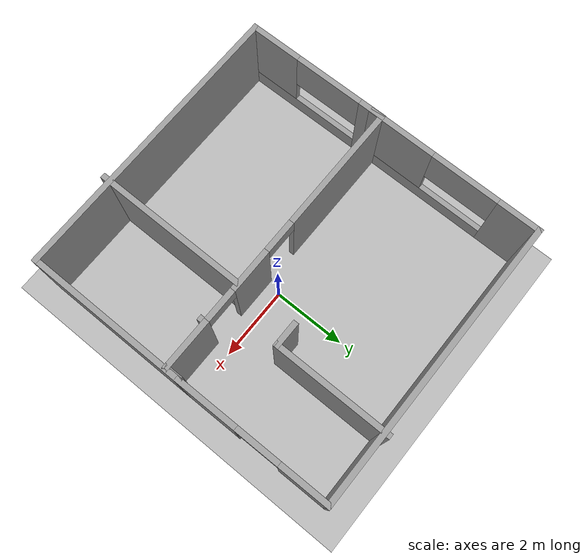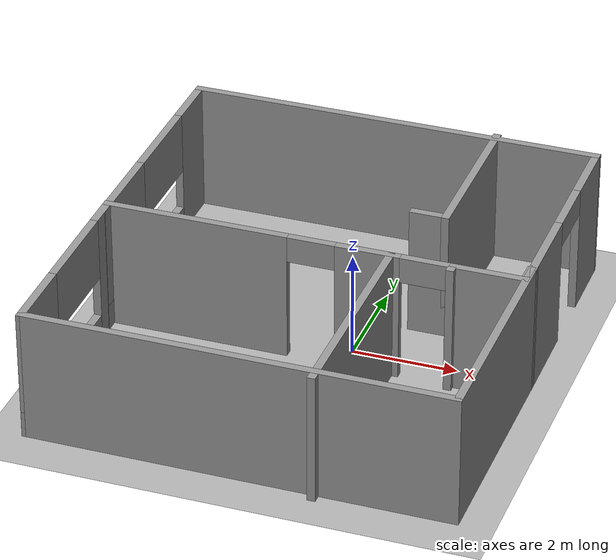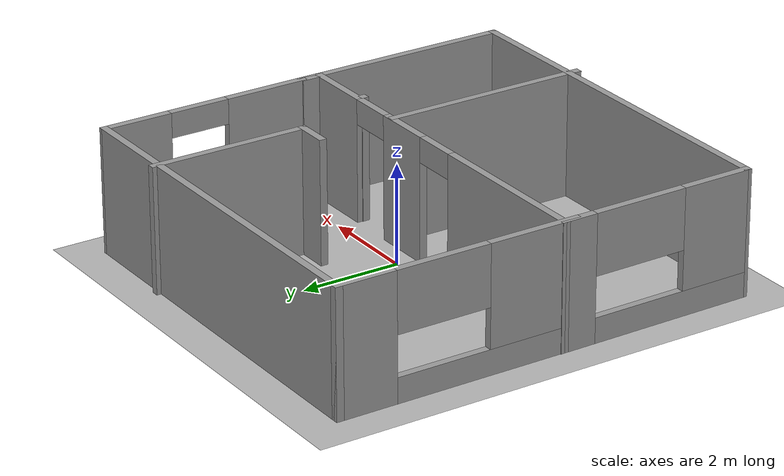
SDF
<sdf version="1.9">
 <world name="world_smth">
  <gravity>0 0 -9.8</gravity>
  <magnetic_field>6e-06 2.3e-05 -4.2e-05</magnetic_field>
  <atmosphere type="adiabatic"/>
  <physics type="ode">
   <max_step_size>0.001</max_step_size>
   <real_time_factor>1</real_time_factor>
   <real_time_update_rate>1000</real_time_update_rate>
  </physics>
  <scene><ambient>0.4 0.4 0.4 1</ambient><background>0.7 0.7 0.7 1</background><shadows>true</shadows></scene>
  <model name="Model">
   <pose>-0.590105 -0.18 0 0 -0 0</pose>
   <link name="Wall_0">
    <collision name="Wall_0_Collision">
     <geometry><box><size>8 0.15 2.5</size></box></geometry>
     <pose>0 0 1.25 0 -0 0</pose>
    </collision>
    <visual name="Wall_0_Visual">
     <pose>0 0 1.25 0 -0 0</pose>
     <geometry><box><size>8 0.15 2.5</size></box></geometry>
     <material>
      <script><uri>file://media/materials/scripts/gazebo.material</uri><name>Gazebo/Grey</name></script>
      <ambient>1 1 1 1</ambient>
     </material>
     <meta><layer>0</layer></meta>
    </visual>
    <pose>0.015105 -4.24 0 0 -0 0</pose>
    <inertial>
     <mass>1</mass>
     <inertia><ixx>1</ixx><ixy>0</ixy><ixz>0</ixz><iyy>1</iyy><iyz>0</iyz><izz>1</izz></inertia>
    </inertial>
   </link>
   <link name="Wall_1">
    <collision name="Wall_1_Collision">
     <geometry><box><size>4.5 0.15 2.5</size></box></geometry>
     <pose>0 0 1.25 0 -0 0</pose>
    </collision>
    <visual name="Wall_1_Visual">
     <pose>0 0 1.25 0 -0 0</pose>
     <geometry><box><size>4.5 0.15 2.5</size></box></geometry>
     <material>
      <script><uri>file://media/materials/scripts/gazebo.material</uri><name>Gazebo/Grey</name></script>
      <ambient>1 1 1 1</ambient>
     </material>
     <meta><layer>0</layer></meta>
    </visual>
    <pose>3.9401 -2.065 0 0 -0 1.5708</pose>
    <inertial>
     <mass>1</mass>
     <inertia><ixx>1</ixx><ixy>0</ixy><ixz>0</ixz><iyy>1</iyy><iyz>0</iyz><izz>1</izz></inertia>
    </inertial>
   </link>
   <link name="Wall_10">
    <collision name="Wall_10_Collision">
     <geometry><box><size>8 0.15 2.5</size></box></geometry>
     <pose>0 0 1.25 0 -0 0</pose>
    </collision>
    <visual name="Wall_10_Visual">
     <pose>0 0 1.25 0 -0 0</pose>
     <geometry><box><size>8 0.15 2.5</size></box></geometry>
     <material>
      <script><uri>file://media/materials/scripts/gazebo.material</uri><name>Gazebo/Grey</name></script>
      <ambient>1 1 1 1</ambient>
     </material>
     <meta><layer>0</layer></meta>
    </visual>
    <pose>-0.004895 4.31 0 0 -0 0</pose>
    <inertial>
     <mass>1</mass>
     <inertia><ixx>1</ixx><ixy>0</ixy><ixz>0</ixz><iyy>1</iyy><iyz>0</iyz><izz>1</izz></inertia>
    </inertial>
   </link>
   <link name="Wall_13">
    <pose>-3.92489 -2.26 0 0 0 -1.56322</pose>
    <visual name="Wall_13_Visual_0">
     <pose>-1.69206 0 1.25 0 -0 0</pose>
     <geometry><box><size>0.725992 0.15 2.5</size></box></geometry>
     <material>
      <script><uri>file://media/materials/scripts/gazebo.material</uri><name>Gazebo/Grey</name></script>
      <ambient>1 1 1 1</ambient>
     </material>
     <meta><layer>0</layer></meta>
    </visual>
    <collision name="Wall_13_Collision_0">
     <geometry><box><size>0.725992 0.15 2.5</size></box></geometry>
     <pose>-1.69206 0 1.25 0 -0 0</pose>
    </collision>
    <visual name="Wall_13_Visual_1">
     <pose>0.362996 0 0.25 0 -0 0</pose>
     <geometry><box><size>3.38412 0.15 0.5</size></box></geometry>
     <material>
      <script><uri>file://media/materials/scripts/gazebo.material</uri><name>Gazebo/Grey</name></script>
      <ambient>1 1 1 1</ambient>
     </material>
     <meta><layer>0</layer></meta>
    </visual>
    <collision name="Wall_13_Collision_1">
     <geometry><box><size>3.38412 0.15 0.5</size></box></geometry>
     <pose>0.362996 0 0.25 0 -0 0</pose>
    </collision>
    <visual name="Wall_13_Visual_2">
     <pose>1.31809 0 1.5 0 -0 0</pose>
     <geometry><box><size>1.47393 0.15 2</size></box></geometry>
     <material>
      <script><uri>file://media/materials/scripts/gazebo.material</uri><name>Gazebo/Grey</name></script>
      <ambient>1 1 1 1</ambient>
     </material>
     <meta><layer>0</layer></meta>
    </visual>
    <collision name="Wall_13_Collision_2">
     <geometry><box><size>1.47393 0.15 2</size></box></geometry>
     <pose>1.31809 0 1.5 0 -0 0</pose>
    </collision>
    <visual name="Wall_13_Visual_3">
     <pose>-0.373967 0 1.9 0 -0 0</pose>
     <geometry><box><size>1.9102 0.15 1.2</size></box></geometry>
     <material>
      <script><uri>file://media/materials/scripts/gazebo.material</uri><name>Gazebo/Grey</name></script>
      <ambient>1 1 1 1</ambient>
     </material>
     <meta><layer>0</layer></meta>
    </visual>
    <collision name="Wall_13_Collision_3">
     <geometry><box><size>1.9102 0.15 1.2</size></box></geometry>
     <pose>-0.373967 0 1.9 0 -0 0</pose>
    </collision>
    <inertial>
     <mass>1</mass>
     <inertia><ixx>1</ixx><ixy>0</ixy><ixz>0</ixz><iyy>1</iyy><iyz>0</iyz><izz>1</izz></inertia>
    </inertial>
   </link>
   <link name="Wall_18">
    <collision name="Wall_18_Collision">
     <geometry><box><size>0.75 0.15 2.5</size></box></geometry>
     <pose>0 0 1.25 0 -0 0</pose>
    </collision>
    <visual name="Wall_18_Visual">
     <pose>0 0 1.25 0 -0 0</pose>
     <geometry><box><size>0.75 0.15 2.5</size></box></geometry>
     <material>
      <script><uri>file://media/materials/scripts/gazebo.material</uri><name>Gazebo/Grey</name></script>
      <ambient>1 1 1 1</ambient>
     </material>
     <meta><layer>0</layer></meta>
    </visual>
    <pose>1.6701 1.3 0 0 -0 0</pose>
    <inertial>
     <mass>1</mass>
     <inertia><ixx>1</ixx><ixy>0</ixy><ixz>0</ixz><iyy>1</iyy><iyz>0</iyz><izz>1</izz></inertia>
    </inertial>
   </link>
   <link name="Wall_19">
    <collision name="Wall_19_Collision">
     <geometry><box><size>3.25 0.15 2.5</size></box></geometry>
     <pose>0 0 1.25 0 -0 0</pose>
    </collision>
    <visual name="Wall_19_Visual">
     <pose>0 0 1.25 0 -0 0</pose>
     <geometry><box><size>3.25 0.15 2.5</size></box></geometry>
     <material>
      <script><uri>file://media/materials/scripts/gazebo.material</uri><name>Gazebo/Grey</name></script>
      <ambient>1 1 1 1</ambient>
     </material>
     <meta><layer>0</layer></meta>
    </visual>
    <pose>1.9701 2.85 0 0 -0 1.5708</pose>
    <inertial>
     <mass>1</mass>
     <inertia><ixx>1</ixx><ixy>0</ixy><ixz>0</ixz><iyy>1</iyy><iyz>0</iyz><izz>1</izz></inertia>
    </inertial>
   </link>
   <link name="Wall_21">
    <pose>3.93011 2.21 0 0 0 -1.56603</pose>
    <visual name="Wall_21_Visual_0">
     <pose>-1.46617 0 1.25 0 -0 0</pose>
     <geometry><box><size>1.41771 0.15 2.5</size></box></geometry>
     <material>
      <script><uri>file://media/materials/scripts/gazebo.material</uri><name>Gazebo/Grey</name></script>
      <ambient>1 1 1 1</ambient>
     </material>
     <meta><layer>0</layer></meta>
    </visual>
    <collision name="Wall_21_Collision_0">
     <geometry><box><size>1.41771 0.15 2.5</size></box></geometry>
     <pose>-1.46617 0 1.25 0 -0 0</pose>
    </collision>
    <visual name="Wall_21_Visual_1">
     <pose>1.3139 0 1.25 0 -0 0</pose>
     <geometry><box><size>1.72226 0.15 2.5</size></box></geometry>
     <material>
      <script><uri>file://media/materials/scripts/gazebo.material</uri><name>Gazebo/Grey</name></script>
      <ambient>1 1 1 1</ambient>
     </material>
     <meta><layer>0</layer></meta>
    </visual>
    <collision name="Wall_21_Collision_1">
     <geometry><box><size>1.72226 0.15 2.5</size></box></geometry>
     <pose>1.3139 0 1.25 0 -0 0</pose>
    </collision>
    <visual name="Wall_21_Visual_2">
     <pose>-0.152275 0 2.25 0 -0 0</pose>
     <geometry><box><size>1.21008 0.15 0.5</size></box></geometry>
     <material>
      <script><uri>file://media/materials/scripts/gazebo.material</uri><name>Gazebo/Grey</name></script>
      <ambient>1 1 1 1</ambient>
     </material>
     <meta><layer>0</layer></meta>
    </visual>
    <collision name="Wall_21_Collision_2">
     <geometry><box><size>1.21008 0.15 0.5</size></box></geometry>
     <pose>-0.152275 0 2.25 0 -0 0</pose>
    </collision>
    <inertial>
     <mass>1</mass>
     <inertia><ixx>1</ixx><ixy>0</ixy><ixz>0</ixz><iyy>1</iyy><iyz>0</iyz><izz>1</izz></inertia>
    </inertial>
   </link>
   <link name="Wall_23">
    <pose>-0.014895 -0.28 0 0 -0 0</pose>
    <visual name="Wall_23_Visual_0">
     <pose>-2.2325 0 1.25 0 -0 0</pose>
     <geometry><box><size>3.535 0.15 2.5</size></box></geometry>
     <material>
      <script><uri>file://media/materials/scripts/gazebo.material</uri><name>Gazebo/Grey</name></script>
      <ambient>1 1 1 1</ambient>
     </material>
     <meta><layer>0</layer></meta>
    </visual>
    <collision name="Wall_23_Collision_0">
     <geometry><box><size>3.535 0.15 2.5</size></box></geometry>
     <pose>-2.2325 0 1.25 0 -0 0</pose>
    </collision>
    <visual name="Wall_23_Visual_1">
     <pose>1.04 0 1.25 0 -0 0</pose>
     <geometry><box><size>1.21 0.15 2.5</size></box></geometry>
     <material>
      <script><uri>file://media/materials/scripts/gazebo.material</uri><name>Gazebo/Grey</name></script>
      <ambient>1 1 1 1</ambient>
     </material>
     <meta><layer>0</layer></meta>
    </visual>
    <collision name="Wall_23_Collision_1">
     <geometry><box><size>1.21 0.15 2.5</size></box></geometry>
     <pose>1.04 0 1.25 0 -0 0</pose>
    </collision>
    <visual name="Wall_23_Visual_2">
     <pose>3.2725 0 1.25 0 -0 0</pose>
     <geometry><box><size>1.455 0.15 2.5</size></box></geometry>
     <material>
      <script><uri>file://media/materials/scripts/gazebo.material</uri><name>Gazebo/Grey</name></script>
      <ambient>1 1 1 1</ambient>
     </material>
     <meta><layer>0</layer></meta>
    </visual>
    <collision name="Wall_23_Collision_2">
     <geometry><box><size>1.455 0.15 2.5</size></box></geometry>
     <pose>3.2725 0 1.25 0 -0 0</pose>
    </collision>
    <visual name="Wall_23_Visual_3">
     <pose>-0.015 0 2.25 0 -0 0</pose>
     <geometry><box><size>0.9 0.15 0.5</size></box></geometry>
     <material>
      <script><uri>file://media/materials/scripts/gazebo.material</uri><name>Gazebo/Grey</name></script>
      <ambient>1 1 1 1</ambient>
     </material>
     <meta><layer>0</layer></meta>
    </visual>
    <collision name="Wall_23_Collision_3">
     <geometry><box><size>0.9 0.15 0.5</size></box></geometry>
     <pose>-0.015 0 2.25 0 -0 0</pose>
    </collision>
    <visual name="Wall_23_Visual_4">
     <pose>2.095 0 2.25 0 -0 0</pose>
     <geometry><box><size>0.9 0.15 0.5</size></box></geometry>
     <material>
      <script><uri>file://media/materials/scripts/gazebo.material</uri><name>Gazebo/Grey</name></script>
      <ambient>1 1 1 1</ambient>
     </material>
     <meta><layer>0</layer></meta>
    </visual>
    <collision name="Wall_23_Collision_4">
     <geometry><box><size>0.9 0.15 0.5</size></box></geometry>
     <pose>2.095 0 2.25 0 -0 0</pose>
    </collision>
    <inertial>
     <mass>1</mass>
     <inertia><ixx>1</ixx><ixy>0</ixy><ixz>0</ixz><iyy>1</iyy><iyz>0</iyz><izz>1</izz></inertia>
    </inertial>
   </link>
   <link name="Wall_24">
    <collision name="Wall_24_Collision">
     <geometry><box><size>0.5 0.15 2.5</size></box></geometry>
     <pose>0 0 1.25 0 -0 0</pose>
    </collision>
    <visual name="Wall_24_Visual">
     <pose>0 0 1.25 0 -0 0</pose>
     <geometry><box><size>0.5 0.15 2.5</size></box></geometry>
     <material>
      <script><uri>file://media/materials/scripts/gazebo.material</uri><name>Gazebo/Grey</name></script>
      <ambient>1 1 1 1</ambient>
     </material>
     <meta><layer>0</layer></meta>
    </visual>
    <pose>3.91011 -0.105 0 0 -0 1.5708</pose>
    <inertial>
     <mass>1</mass>
     <inertia><ixx>1</ixx><ixy>0</ixy><ixz>0</ixz><iyy>1</iyy><iyz>0</iyz><izz>1</izz></inertia>
    </inertial>
   </link>
   <link name="Wall_27">
    <pose>-3.9299 1.885 0 0 0 -1.5708</pose>
    <visual name="Wall_27_Visual_0">
     <pose>-1.8925 0 1.25 0 -0 0</pose>
     <geometry><box><size>1.215 0.15 2.5</size></box></geometry>
     <material>
      <script><uri>file://media/materials/scripts/gazebo.material</uri><name>Gazebo/Grey</name></script>
      <ambient>1 1 1 1</ambient>
     </material>
     <meta><layer>0</layer></meta>
    </visual>
    <collision name="Wall_27_Collision_0">
     <geometry><box><size>1.215 0.15 2.5</size></box></geometry>
     <pose>-1.8925 0 1.25 0 -0 0</pose>
    </collision>
    <visual name="Wall_27_Visual_1">
     <pose>0.6075 0 0.25 0 -0 0</pose>
     <geometry><box><size>3.785 0.15 0.5</size></box></geometry>
     <material>
      <script><uri>file://media/materials/scripts/gazebo.material</uri><name>Gazebo/Grey</name></script>
      <ambient>1 1 1 1</ambient>
     </material>
     <meta><layer>0</layer></meta>
    </visual>
    <collision name="Wall_27_Collision_1">
     <geometry><box><size>3.785 0.15 0.5</size></box></geometry>
     <pose>0.6075 0 0.25 0 -0 0</pose>
    </collision>
    <visual name="Wall_27_Visual_2">
     <pose>1.5525 0 1.5 0 -0 0</pose>
     <geometry><box><size>1.895 0.15 2</size></box></geometry>
     <material>
      <script><uri>file://media/materials/scripts/gazebo.material</uri><name>Gazebo/Grey</name></script>
      <ambient>1 1 1 1</ambient>
     </material>
     <meta><layer>0</layer></meta>
    </visual>
    <collision name="Wall_27_Collision_2">
     <geometry><box><size>1.895 0.15 2</size></box></geometry>
     <pose>1.5525 0 1.5 0 -0 0</pose>
    </collision>
    <visual name="Wall_27_Visual_3">
     <pose>-0.34 0 1.9 0 -0 0</pose>
     <geometry><box><size>1.89 0.15 1.2</size></box></geometry>
     <material>
      <script><uri>file://media/materials/scripts/gazebo.material</uri><name>Gazebo/Grey</name></script>
      <ambient>1 1 1 1</ambient>
     </material>
     <meta><layer>0</layer></meta>
    </visual>
    <collision name="Wall_27_Collision_3">
     <geometry><box><size>1.89 0.15 1.2</size></box></geometry>
     <pose>-0.34 0 1.9 0 -0 0</pose>
    </collision>
    <inertial>
     <mass>1</mass>
     <inertia><ixx>1</ixx><ixy>0</ixy><ixz>0</ixz><iyy>1</iyy><iyz>0</iyz><izz>1</izz></inertia>
    </inertial>
   </link>
   <link name="Wall_3">
    <collision name="Wall_3_Collision">
     <geometry><box><size>0.15 0.15 2.5</size></box></geometry>
     <pose>0 0 1.25 0 -0 0</pose>
    </collision>
    <visual name="Wall_3_Visual">
     <pose>0 0 1.25 0 -0 0</pose>
     <geometry><box><size>0.15 0.15 2.5</size></box></geometry>
     <material>
      <script><uri>file://media/materials/scripts/gazebo.material</uri><name>Gazebo/Grey</name></script>
      <ambient>1 1 1 1</ambient>
     </material>
     <meta><layer>0</layer></meta>
    </visual>
    <pose>2.5901 -0.39 0 0 -0 0</pose>
    <inertial>
     <mass>1</mass>
     <inertia><ixx>1</ixx><ixy>0</ixy><ixz>0</ixz><iyy>1</iyy><iyz>0</iyz><izz>1</izz></inertia>
    </inertial>
   </link>
   <link name="Wall_6">
    <collision name="Wall_6_Collision">
     <geometry><box><size>4.25 0.15 2.5</size></box></geometry>
     <pose>0 0 1.25 0 -0 0</pose>
    </collision>
    <visual name="Wall_6_Visual">
     <pose>0 0 1.25 0 -0 0</pose>
     <geometry><box><size>4.25 0.15 2.5</size></box></geometry>
     <material>
      <script><uri>file://media/materials/scripts/gazebo.material</uri><name>Gazebo/Grey</name></script>
      <ambient>1 1 1 1</ambient>
     </material>
     <meta><layer>0</layer></meta>
    </visual>
    <pose>1.4401 -2.35 0 0 0 -1.5708</pose>
    <inertial>
     <mass>1</mass>
     <inertia><ixx>1</ixx><ixy>0</ixy><ixz>0</ixz><iyy>1</iyy><iyz>0</iyz><izz>1</izz></inertia>
    </inertial>
   </link>
   <static>true</static>
  </model>
  <model name="ground_plane">
   <static>true</static>
   <link name="link">
    <collision name="collision">
     <geometry><plane><normal>0 0 1</normal><size>100 100</size></plane></geometry>
     <surface><friction><ode><mu>100</mu><mu2>50</mu2></ode></friction></surface>
    </collision>
    <visual name="visual">
     <cast_shadows>false</cast_shadows>
     <geometry><plane><normal>0 0 1</normal><size>100 100</size></plane></geometry>
     <material>
      <ambient>0.3 0.3 0.3 1</ambient>
      <diffuse>0.7 0.7 0.7 1</diffuse>
      <specular>0.01 0.01 0.01 1</specular>
     </material>
    </visual>
    <inertial>
     <mass>1</mass>
     <inertia><ixx>1</ixx><ixy>0</ixy><ixz>0</ixz><iyy>1</iyy><iyz>0</iyz><izz>1</izz></inertia>
    </inertial>
   </link>
   <pose>1.22709 -3.64676 0 0 -0 0</pose>
  </model>
 </world>
</sdf>
